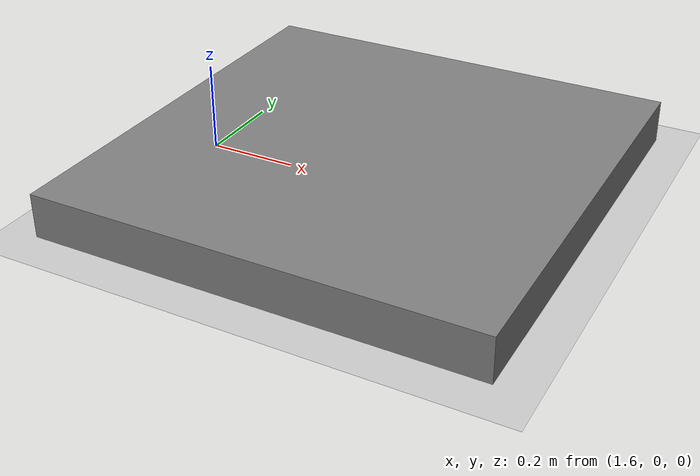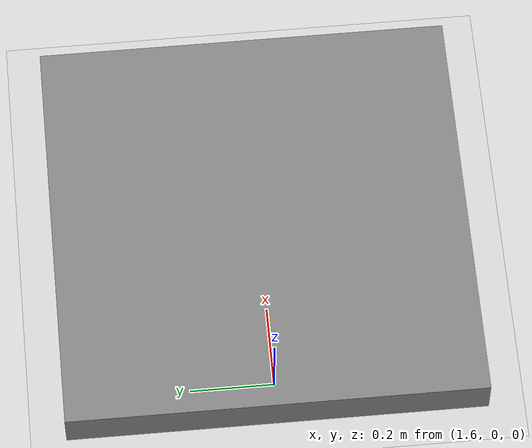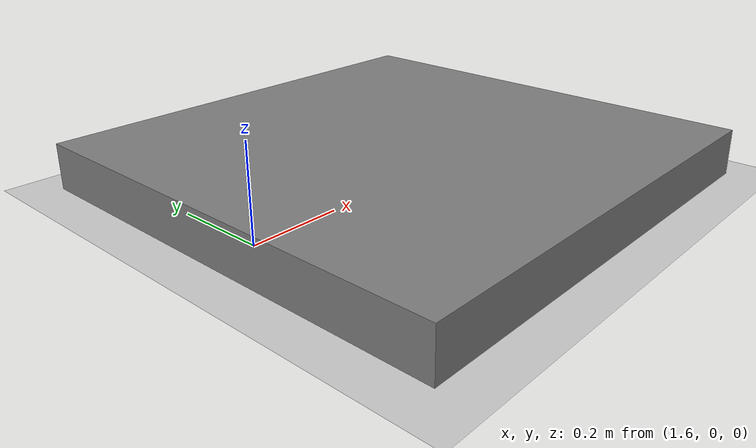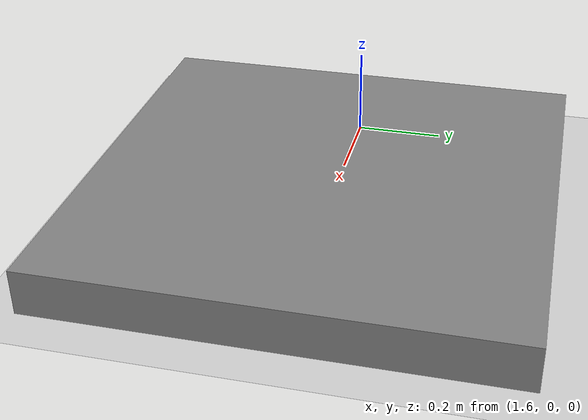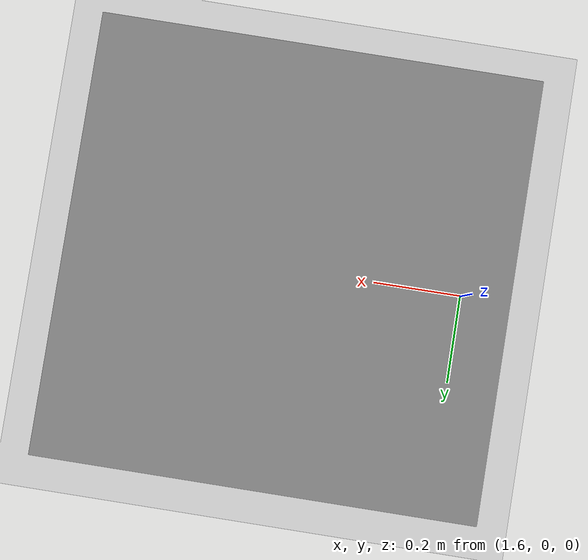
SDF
<?xml version="1.0"?>
<sdf version="1.7">
  <world name="humanoid_simulation_world">
    <!-- Physics engine configuration -->
    <physics name="humanoid_physics" type="ode">
      <max_step_size>0.001</max_step_size>
      <real_time_update_rate>1000.0</real_time_update_rate>
      <real_time_factor>1.0</real_time_factor>
      <gravity>0 0 -9.8</gravity>
      <ode>
        <solver>
          <type>quick</type>
          <iters>10</iters>
          <sor>1.3</sor>
        </solver>
        <constraints>
          <cfm>0.0</cfm>
          <erp>0.2</erp>
          <contact_max_correcting_vel>100.0</contact_max_correcting_vel>
          <contact_surface_layer>0.001</contact_surface_layer>
        </constraints>
      </ode>
    </physics>

    <!-- Lighting -->
    <light name="sun" type="directional">
      <cast_shadows>true</cast_shadows>
      <pose>0 0 10 0 0 0</pose>
      <diffuse>0.8 0.8 0.8 1</diffuse>
      <specular>0.2 0.2 0.2 1</specular>
      <attenuation>
        <range>1000</range>
        <constant>0.9</constant>
        <linear>0.01</linear>
        <quadratic>0.001</quadratic>
      </attenuation>
      <direction>-0.6 0.3 -0.9</direction>
    </light>

    <!-- Ground plane -->
    <model name="ground_plane">
      <static>true</static>
      <link name="link">
        <collision name="collision">
          <geometry>
            <plane>
              <normal>0 0 1</normal>
              <size>100 100</size>
            </plane>
          </geometry>
        </collision>
        <visual name="visual">
          <geometry>
            <plane>
              <normal>0 0 1</normal>
              <size>100 100</size>
            </plane>
          </geometry>
          <material>
            <ambient>0.8 0.8 0.8 1</ambient>
            <diffuse>0.8 0.8 0.8 1</diffuse>
            <specular>0.2 0.2 0.2 1</specular>
          </material>
        </visual>
      </link>
    </model>

    <!-- Optional: Add simple obstacles for humanoid testing -->
    <model name="step_obstacle">
      <pose>2 0 0.05 0 0 0</pose>
      <static>true</static>
      <link name="link">
        <collision name="collision">
          <geometry>
            <box>
              <size>1 1 0.1</size>
            </box>
          </geometry>
        </collision>
        <visual name="visual">
          <geometry>
            <box>
              <size>1 1 0.1</size>
            </box>
          </geometry>
          <material>
            <ambient>0.5 0.5 0.5 1</ambient>
            <diffuse>0.5 0.5 0.5 1</diffuse>
          </material>
        </visual>
      </link>
    </model>

    <!-- Placeholders for humanoid robot models -->
    <!-- These would be loaded separately via spawn commands -->

  </world>
</sdf>
